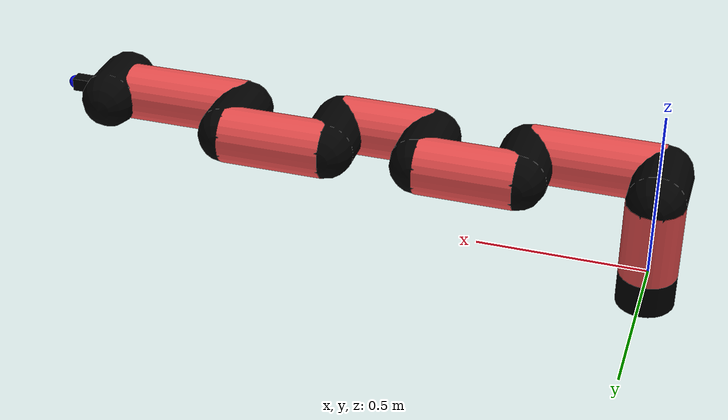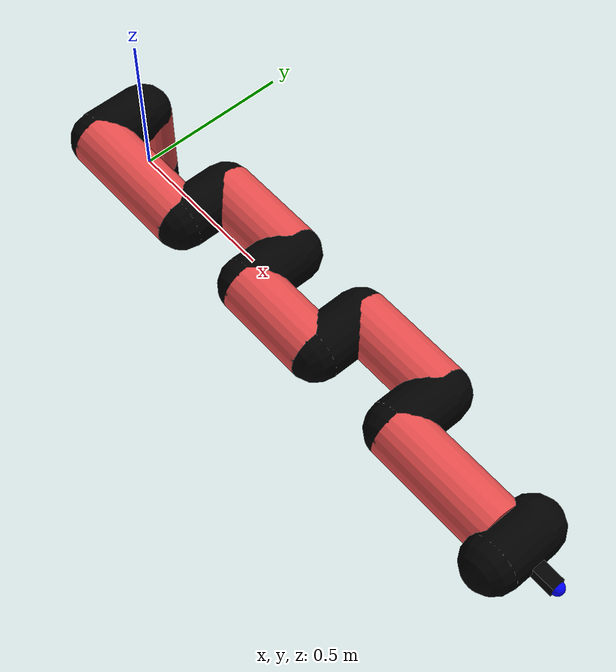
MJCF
<mujoco model="manipulator">
		<compiler angle="degree" coordinate="local" inertiafromgeom="auto" meshdir="meshes/"/>
		<option gravity="0 0 0" integrator="RK4" iterations="30" timestep="0.01"/>

		<default>
		<joint armature="1" limited="true" stiffness="10" damping="15" frictionloss="5.0"/>
		<geom conaffinity="1" condim="3" contype="1" friction=".5 .1 .1" margin="0.002"/>
		<motor ctrllimited="true"/>
		<position ctrllimited="true"/>
		</default>

		<asset>
		<texture builtin="gradient" height="100" rgb1="1.0 1.0 1.0" rgb2="1.0 1.0 1.0" type="skybox" width="100"/>
		<texture builtin="flat" height="32" name="arm_tex" rgb1="0.9 0.3 0.3" type="2d" width="32"/>
		<texture builtin="flat" height="32" name="gripper_tex" rgb1="0.0 0.0 0.0" type="cube" width="32"/>

		<material name="arm_mat" shininess="0.1" specular="0.1" texture="arm_tex"/>
		<material name="gripper_mat" shininess="1" specular="1" texture="gripper_tex"/>
		</asset>

		<worldbody>
		<light cutoff="45" diffuse=".8 .8 .8" dir="0 0.16 -1" directional="false" name="light" pos="0 -2.0 8.0" specular="0.3 0.3 0.3"/>

		<body name="base_link" pos="0 0 -0.1">
		<geom fromto="0 0 0 0 0 0.1" material="arm_mat" name="base_link" rgba="0.0 0.0 0.0 1" size="0.085" type="cylinder"/>
		</body>

		<body name="l1" pos="0 0 0">
<geom fromto="0 0 0 0 0 0.23" material="arm_mat" name="l1" rgba="0.9 0.3 0.3 1" size="0.085" type="cylinder"/>
<geom fromto="0 0 0.23 0 -0.16 0.23" material="arm_mat" name="l1_ex" rgba="0.0 0.0 0.0 1" size="0.085" type="capsule"/>
<joint axis="0 0 1" name="j1" pos="0 0 0" range="-90 90" damping="23.54" frictionloss="10.2"/>

<body name="l2" pos="0 -0.16 0.23">
<geom fromto="0 0 0 0.39 0 0" material="arm_mat" name="l2" rgba="0.9 0.3 0.3 1" size="0.085" type="cylinder"/>
<geom fromto="0.39 0 0 0.39 0.16 0" material="arm_mat" name="l2_ex" rgba="0.0 0.0 0.0 1" size="0.085" type="capsule"/>
<joint axis="0.0 1.0 0.0" name="j2" pos="0 0 0" range="-90 60" damping="35.49" frictionloss="10.74"/>

<body name="l3" pos="0.39 0.16 0">
<geom fromto="0 0 0 0.29 0 0" material="arm_mat" name="l3" rgba="0.9 0.3 0.3 1" size="0.085" type="cylinder"/>
<geom fromto="0.29 0 0 0.29 -0.16 0" material="arm_mat" name="l3_ex" rgba="0.0 0.0 0.0 1" size="0.085" type="capsule"/>
<joint axis="0.0 1.0 0.0" name="j3" pos="0 0 0" range="-30 60" damping="31.0" frictionloss="12.39"/>

<body name="l4" pos="0.29 -0.16 0">
<geom fromto="0 0 0 0.28 0 0" material="arm_mat" name="l4" rgba="0.9 0.3 0.3 1" size="0.085" type="cylinder"/>
<geom fromto="0.28 0 0 0.28 0.16 0" material="arm_mat" name="l4_ex" rgba="0.0 0.0 0.0 1" size="0.085" type="capsule"/>
<joint axis="0.0 1.0 0.0" name="j4" pos="0 0 0" range="-30 60" damping="23.71" frictionloss="7.82"/>

<body name="l5" pos="0.28 0.16 0">
<geom fromto="0 0 0 0.31 0 0" material="arm_mat" name="l5" rgba="0.9 0.3 0.3 1" size="0.085" type="cylinder"/>
<geom fromto="0.31 0 0 0.31 -0.16 0" material="arm_mat" name="l5_ex" rgba="0.0 0.0 0.0 1" size="0.085" type="capsule"/>
<joint axis="0.0 1.0 0.0" name="j5" pos="0 0 0" range="-30 60" damping="31.16" frictionloss="8.47"/>

<body name="l6" pos="0.31 -0.16 0">
<geom fromto="0 0 0 0.37 0 0" material="arm_mat" name="l6" rgba="0.9 0.3 0.3 1" size="0.085" type="cylinder"/>
<joint axis="0.0 1.0 0.0" name="j6" pos="0 0 0" range="-30 60" damping="29.8" frictionloss="9.24"/>

<body name="gripper" pos="0.37 0 0">
<geom fromto="0.05 -0.07 0 0.05 0.07 0" material="gripper_mat" name="gripper" rgba="0.0 0.0 0.0 1" size="0.085" type="capsule"/><joint axis="1 0 0" name="j7" pos="0 0 0" range="-90 90" damping="15" frictionloss="5.0"/><body name="finger" pos="0.1 0 0">
<geom fromto="0 0.0 0 0.1 0.0 0" material="gripper_mat" name="finger" rgba="0.0 0.0 0.0 1" size="0.020 0.06 0.06" type="box"/>
</body>
<site name="current" pos="0.2 0. 0.0" rgba="0. 0. 1.0 1" size="0.02" type="sphere"/>
</body>
</body>
</body>
</body>
</body>
</body>
</body>
</worldbody>
<actuator>
<motor ctrllimited="true" ctrlrange="-1.0 1.0" joint="j1" gear="96.86"/>
<motor ctrllimited="true" ctrlrange="-1.0 1.0" joint="j2" gear="81.35"/>
<motor ctrllimited="true" ctrlrange="-1.0 1.0" joint="j3" gear="60.71"/>
<motor ctrllimited="true" ctrlrange="-1.0 1.0" joint="j4" gear="67.08"/>
<motor ctrllimited="true" ctrlrange="-1.0 1.0" joint="j5" gear="86.79"/>
<motor ctrllimited="true" ctrlrange="-1.0 1.0" joint="j6" gear="94.31"/>
<motor ctrllimited="true" ctrlrange="-1.0 1.0" joint="j7" gear="80"/>
</actuator>
</mujoco>
